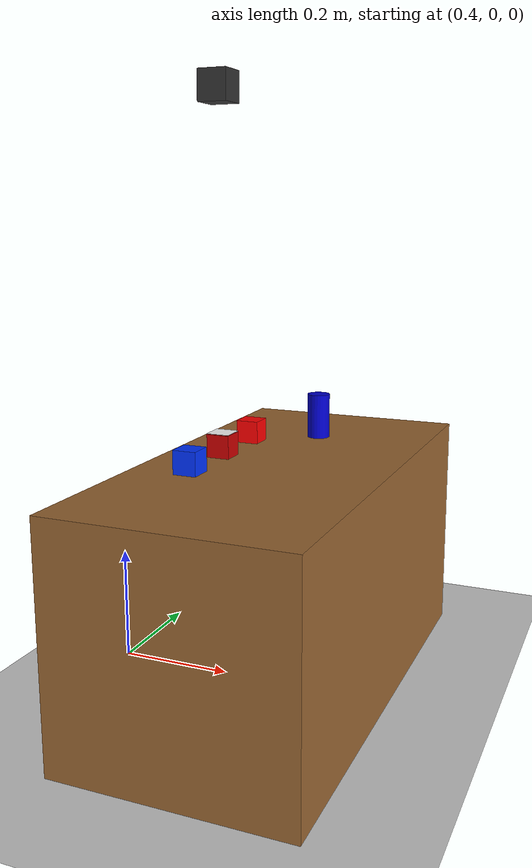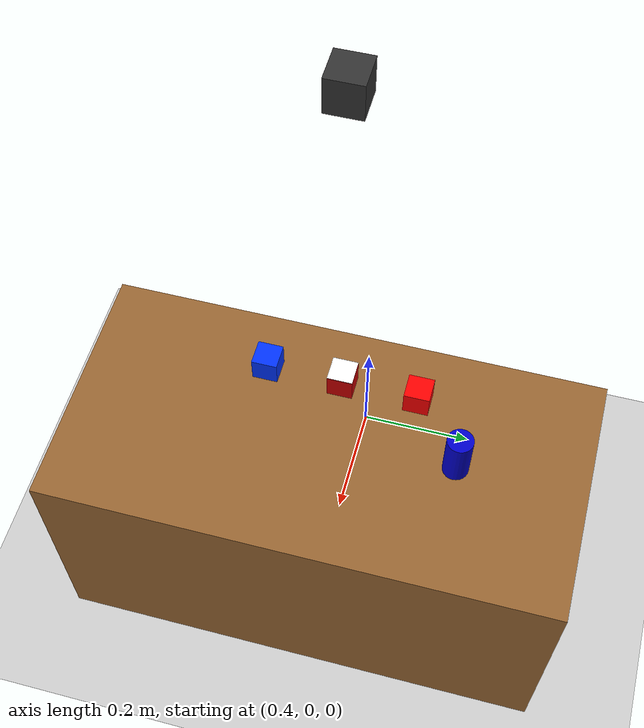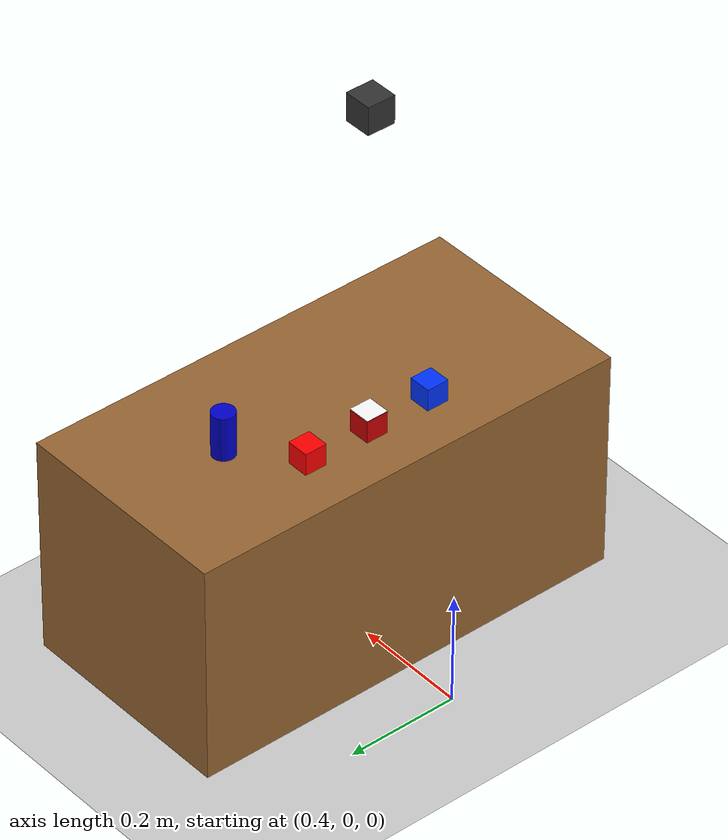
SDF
<?xml version="1.0" ?>
<sdf version="1.9">
  <world name="pick_place_world">

    <!-- Physics -->
    <physics name="1ms" type="ignored">
      <max_step_size>0.001</max_step_size>
      <real_time_factor>1.0</real_time_factor>
    </physics>

    <!-- Plugins required for Gazebo sim -->
    <plugin filename="gz-sim-physics-system" name="gz::sim::systems::Physics"/>
    <plugin filename="gz-sim-user-commands-system" name="gz::sim::systems::UserCommands"/>
    <plugin filename="gz-sim-scene-broadcaster-system" name="gz::sim::systems::SceneBroadcaster"/>
    <plugin filename="gz-sim-sensors-system" name="gz::sim::systems::Sensors">
      <render_engine>ogre2</render_engine>
    </plugin>

    <!-- Lighting -->
    <light type="directional" name="sun">
      <cast_shadows>true</cast_shadows>
      <pose>0 0 10 0 0 0</pose>
      <diffuse>0.8 0.8 0.8 1</diffuse>
      <specular>0.2 0.2 0.2 1</specular>
      <direction>-0.5 0.1 -0.9</direction>
    </light>

    <!-- Ground plane -->
    <model name="ground_plane">
      <static>true</static>
      <link name="link">
        <collision name="collision">
          <geometry><plane><normal>0 0 1</normal></plane></geometry>
        </collision>
        <visual name="visual">
          <geometry><plane><normal>0 0 1</normal><size>100 100</size></plane></geometry>
          <material>
            <ambient>0.8 0.8 0.8 1</ambient>
            <diffuse>0.8 0.8 0.8 1</diffuse>
          </material>
        </visual>
      </link>
    </model>

    <!-- Table (matches scene_objects.yaml: 0.4 x 0.8 x 0.4m) -->
    <model name="table">
      <static>true</static>
      <pose>0.7 0 0.2 0 0 0</pose>
      <link name="link">
        <collision name="collision">
          <geometry><box><size>0.4 0.8 0.4</size></box></geometry>
        </collision>
        <visual name="visual">
          <geometry><box><size>0.4 0.8 0.4</size></box></geometry>
          <material>
            <ambient>0.6 0.4 0.2 1</ambient>
            <diffuse>0.6 0.4 0.2 1</diffuse>
          </material>
        </visual>
      </link>
    </model>

    <!-- Red box with AprilTag on top (tag36h11 ID 0, 0.04m cube at x=0.6) -->
    <include>
      <uri>model://red_box_apriltag</uri>
      <name>red_box</name>
      <pose>0.6 0.0 0.42 0 0 0</pose>
    </include>

    <!-- Plain red box for YOLO/color-based detection (Phase 2B) -->
    <!-- Uniformly red on all faces — no AprilTag texture -->
    <model name="red_box_plain">
      <pose>0.6 0.12 0.42 0 0 0</pose>
      <link name="link">
        <inertial>
          <mass>0.1</mass>
          <inertia>
            <ixx>0.0000267</ixx><iyy>0.0000267</iyy><izz>0.0000267</izz>
          </inertia>
        </inertial>
        <collision name="collision">
          <geometry><box><size>0.04 0.04 0.04</size></box></geometry>
        </collision>
        <visual name="visual">
          <geometry><box><size>0.04 0.04 0.04</size></box></geometry>
          <material>
            <ambient>1.0 0.0 0.0 1</ambient>
            <diffuse>1.0 0.0 0.0 1</diffuse>
            <specular>0.1 0.0 0.0 1</specular>
          </material>
        </visual>
      </link>
    </model>

    <!-- Blue box for VLM/open-vocabulary detection (Phase 2C) -->
    <!-- Uniformly blue 4cm cube — detected via text prompt "blue box" -->
    <model name="blue_box">
      <pose>0.6 -0.12 0.42 0 0 0</pose>
      <link name="link">
        <inertial>
          <mass>0.1</mass>
          <inertia>
            <ixx>0.0000267</ixx><iyy>0.0000267</iyy><izz>0.0000267</izz>
          </inertia>
        </inertial>
        <collision name="collision">
          <geometry><box><size>0.04 0.04 0.04</size></box></geometry>
        </collision>
        <visual name="visual">
          <geometry><box><size>0.04 0.04 0.04</size></box></geometry>
          <material>
            <ambient>0.0 0.2 1.0 1</ambient>
            <diffuse>0.0 0.2 1.0 1</diffuse>
            <specular>0.0 0.05 0.3 1</specular>
          </material>
        </visual>
      </link>
    </model>

    <!-- Blue cylinder on table (matches scene_objects.yaml: h=0.08 r=0.02 at x=0.7) -->
    <model name="blue_cylinder">
      <pose>0.7 0.2 0.44 0 0 0</pose>
      <link name="link">
        <inertial>
          <mass>0.1</mass>
          <inertia>
            <ixx>0.0000573</ixx><iyy>0.0000573</iyy><izz>0.0000200</izz>
          </inertia>
        </inertial>
        <collision name="collision">
          <geometry><cylinder><radius>0.02</radius><length>0.08</length></cylinder></geometry>
        </collision>
        <visual name="visual">
          <geometry><cylinder><radius>0.02</radius><length>0.08</length></cylinder></geometry>
          <material>
            <ambient>0.0 0.0 0.8 1</ambient>
            <diffuse>0.0 0.0 0.8 1</diffuse>
          </material>
        </visual>
      </link>
    </model>

    <!-- RGB-D camera for AprilTag detection -->
    <!-- Directly above table center, looking straight down -->
    <!-- pitch=π/2 rotates camera +X axis to point in world -Z (downward) -->
    <model name="rgbd_camera">
      <static>true</static>
      <pose>0.6 0.0 1.0 0 1.5708 0</pose>
      <link name="camera_link">
        <visual name="visual">
          <geometry><box><size>0.05 0.05 0.05</size></box></geometry>
          <material>
            <ambient>0.2 0.2 0.2 1</ambient>
            <diffuse>0.2 0.2 0.2 1</diffuse>
          </material>
        </visual>
        <sensor name="rgbd_camera" type="rgbd_camera">
          <camera>
            <horizontal_fov>1.047</horizontal_fov>
            <image>
              <width>640</width>
              <height>480</height>
              <format>R8G8B8</format>
            </image>
            <clip>
              <near>0.1</near>
              <far>10</far>
            </clip>
            <depth_camera>
              <clip>
                <near>0.1</near>
                <far>5</far>
              </clip>
            </depth_camera>
          </camera>
          <always_on>1</always_on>
          <update_rate>15</update_rate>
          <visualize>true</visualize>
          <topic>rgbd_camera</topic>
        </sensor>
      </link>
    </model>

  </world>
</sdf>

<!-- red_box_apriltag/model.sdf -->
<sdf version="1.9">
  <model name="red_box_apriltag">
    <link name="link">
      <inertial>
        <mass>0.1</mass>
        <inertia>
          <ixx>0.0000267</ixx>
          <iyy>0.0000267</iyy>
          <izz>0.0000267</izz>
        </inertia>
      </inertial>

      <collision name="collision">
        <geometry>
          <box><size>0.04 0.04 0.04</size></box>
        </geometry>
      </collision>

      <!-- Red box body -->
      <visual name="box_visual">
        <geometry>
          <box><size>0.04 0.04 0.04</size></box>
        </geometry>
        <material>
          <ambient>0.8 0.0 0.0 1</ambient>
          <diffuse>0.8 0.0 0.0 1</diffuse>
        </material>
      </visual>

      <!-- AprilTag on top face (thin plane sitting on top of the box) -->
      <visual name="apriltag_visual">
        <pose>0 0 0.021 0 0 0</pose>
        <geometry>
          <box><size>0.04 0.04 0.001</size></box>
        </geometry>
        <material>
          <ambient>1 1 1 1</ambient>
          <diffuse>1 1 1 1</diffuse>
          <pbr>
            <metal>
              <albedo_map>model://red_box_apriltag/materials/textures/tag36h11_id0.png</albedo_map>
              <metalness>0.0</metalness>
              <roughness>0.9</roughness>
            </metal>
          </pbr>
        </material>
      </visual>
    </link>
  </model>
</sdf>
